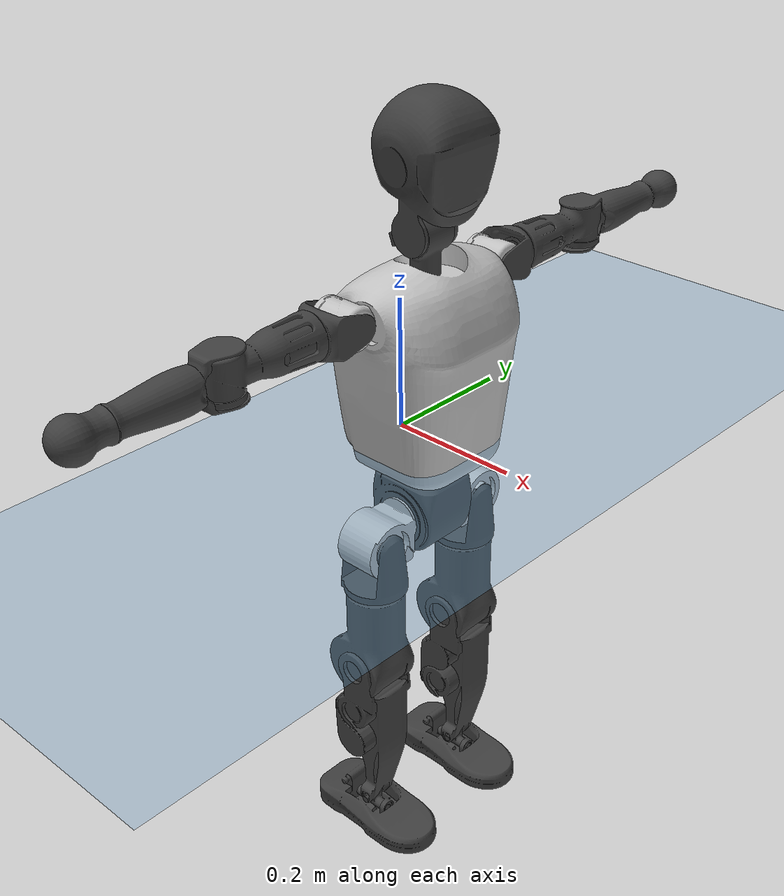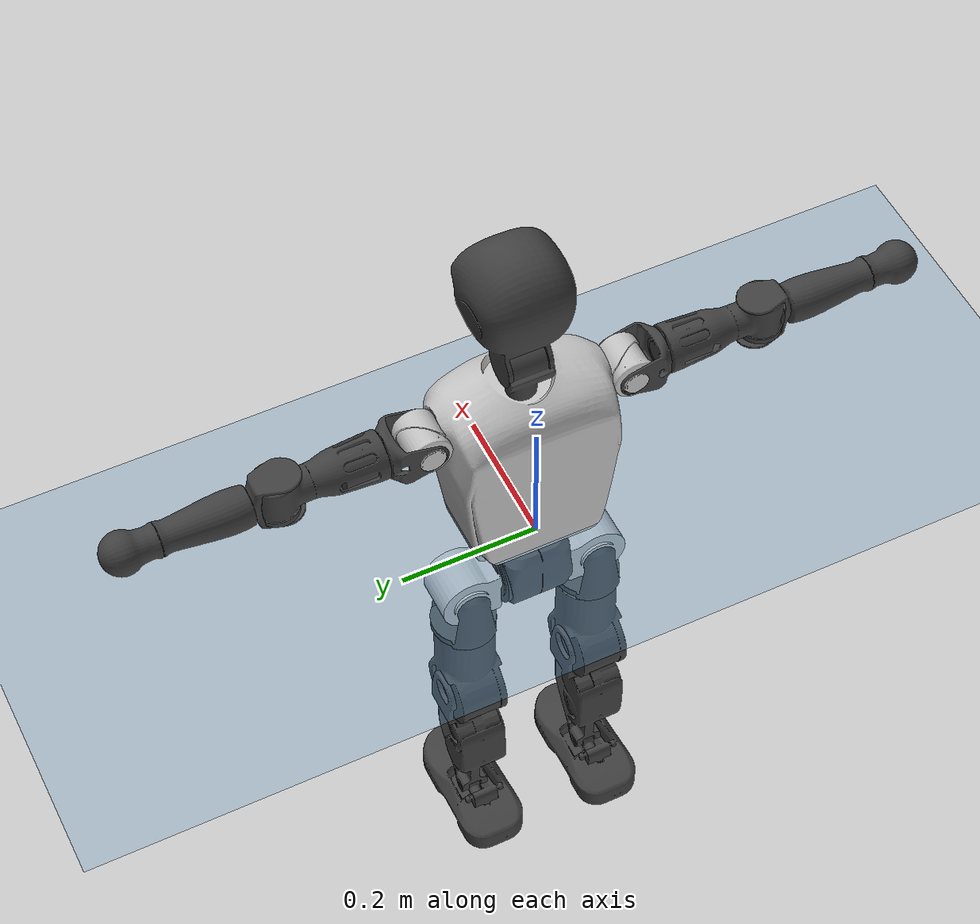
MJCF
<mujoco model="T1">
  <compiler angle="radian" assetdir="assets" balanceinertia="true" inertiafromgeom="false"/>

  <option timestep="0.005" density="1.2" viscosity="2e-05"/>

  <size nkey="1"/>

  <visual>
    <quality shadowsize="8192"/>
    <map shadowclip="0.5"/>
  </visual>

  <default>
    <default class="/">
      <joint armature="0.01" damping="0.01" frictionloss="0.1"/>
      <geom contype="0" conaffinity="0" group="1" solref="-1000 -80"/>
      <site size="0.01 0.005 0.005" group="5"/>
      <general forcelimited="true" biastype="affine" gainprm="25" biasprm="0 -25 -0.6"/>
      <default class="t1">
        <geom rgba="0.25 0.25 0.25 1"/>
        <default class="visual">
          <geom type="mesh" group="2"/>
        </default>
        <default class="collision">
          <geom group="3"/>
        </default>
        <default class="foot">
          <geom size="0.1115 0.05 0.015" type="box" condim="6" group="4" priority="1" solimp="0.015 1 0.015"/>
        </default>
        <default class="reward_collision_sphere">
          <geom group="5" rgba="1 0 0 1"/>
        </default>
      </default>
    </default>
  </default>

  <asset>
    <texture type="skybox" colorspace="auto" name="//unnamed_texture_0" builtin="gradient" rgb1="0.95 0.95 0.95" rgb2="0.95 0.95 0.95" width="100" height="600"/>
    <texture type="2d" colorspace="auto" name="texplane" builtin="checker" rgb1="0.345 0.575 0.748" rgb2="0.345 0.575 0.748" markrgb="1 1 1" width="512" height="512"/>
    <material name="MatPlane" class="/" texture="texplane" texuniform="true" texrepeat="2 2" specular="0.9"/>
    <mesh name="Trunk" class="/" file="Trunk.stl"/>
    <mesh name="H1" class="/" file="H1.stl"/>
    <mesh name="H2" class="/" file="H2.stl"/>
    <mesh name="AL1" class="/" file="AL1.stl"/>
    <mesh name="AL2" class="/" file="AL2.stl"/>
    <mesh name="AL3" class="/" file="AL3.stl"/>
    <mesh name="left_hand_link" class="/" file="left_hand_link.stl"/>
    <mesh name="AR1" class="/" file="AR1.stl"/>
    <mesh name="AR2" class="/" file="AR2.stl"/>
    <mesh name="AR3" class="/" file="AR3.stl"/>
    <mesh name="right_hand_link" class="/" file="right_hand_link.stl"/>
    <mesh name="Waist" class="/" file="Waist.stl"/>
    <mesh name="Hip_Pitch_Left" class="/" file="Hip_Pitch_Left.stl"/>
    <mesh name="Hip_Roll_Left" class="/" file="Hip_Roll_Left.stl"/>
    <mesh name="Hip_Yaw_Left" class="/" file="Hip_Yaw_Left.stl"/>
    <mesh name="Shank_Left" class="/" file="Shank_Left.stl"/>
    <mesh name="Ankle_Cross_Left" class="/" file="Ankle_Cross_Left.stl"/>
    <mesh name="left_foot_link" class="/" file="left_foot_link.stl"/>
    <mesh name="Hip_Pitch_Right" class="/" file="Hip_Pitch_Right.stl"/>
    <mesh name="Hip_Roll_Right" class="/" file="Hip_Roll_Right.stl"/>
    <mesh name="Hip_Yaw_Right" class="/" file="Hip_Yaw_Right.stl"/>
    <mesh name="Shank_Right" class="/" file="Shank_Right.stl"/>
    <mesh name="Ankle_Cross_Right" class="/" file="Ankle_Cross_Right.stl"/>
    <mesh name="right_foot_link" class="/" file="right_foot_link.stl"/>
  </asset>

  <worldbody>
    <geom name="floor" class="/" size="100 100 0.125" type="plane" group="0" material="MatPlane"/>
    <light name="toplight_shadow" class="/" pos="0 0 5" dir="0.0990148 0.0990148 -0.990148" type="directional" ambient="0.04 0.04 0.04" diffuse="0.55 0.55 0.55" specular="0.12 0.12 0.12"/>
    <light name="toplight_fill" class="/" pos="0 0 5" dir="0.0990148 0.0990148 -0.990148" type="directional" castshadow="false" ambient="0.04 0.04 0.04" diffuse="0.3 0.3 0.3" specular="0.08 0.08 0.08"/>
    <body name="trunk" childclass="t1" pos="0.000643264 -0.00218659 0.00155055" quat="0.999999 -0.000960975 -0.000330148 0.000543139">
      <inertial pos="0.0393176 -0.00170879 0.106704" quat="0.999958 0.00156247 -0.00907682 0.000159609" mass="8.3567" diaginertia="0.0181178 0.0573431 0.0655279"/>
      <joint name="//unnamed_joint_0" type="free" armature="0" damping="0" frictionloss="0"/>
      <geom name="//unnamed_geom_1" class="visual" rgba="0.76 0.76 0.76 1" mesh="Trunk"/>
      <geom name="//unnamed_geom_2" class="collision" size="0.0670319 0.0893759 0.134064" pos="0.043191 0 0.122457" type="box"/>
      <geom name="//unnamed_geom_3" class="reward_collision_sphere" size="0.102782" pos="0.043191 0 0.102048"/>
      <geom name="//unnamed_geom_4" class="reward_collision_sphere" size="0.0134064" pos="0.043191 0.0799806 0"/>
      <geom name="//unnamed_geom_5" class="reward_collision_sphere" size="0.0134064" pos="0.043191 -0.0799806 0"/>
      <geom name="//unnamed_geom_6" class="reward_collision_sphere" size="0.0134064" pos="0.043191 0.100681 0.183686"/>
      <geom name="//unnamed_geom_7" class="reward_collision_sphere" size="0.0134064" pos="0.043191 -0.100681 0.183686"/>
      <site name="imu" pos="0.00775903 0.00525195 -0.00525717" size="0.00893759"/>
      <camera name="track" pos="0 -1.8819 0" quat="0.707107 0.707107 0 0" mode="trackcom"/>
      <camera name="ego_camera" pos="0.0878218 0 0.4286" quat="-0.5 -0.5 0.5 0.5"/>
      <body name="H1" pos="0.0464608 0.00198109 0.246302" quat="1 7.37451e-06 -5.58763e-05 8.5433e-05">
        <inertial pos="-0.00311068 -0.00208553 0.0601719" quat="0.767667 -0.0117294 0.0132243 0.640605" mass="0.318437" diaginertia="4.63806e-05 0.000166479 0.000165737"/>
        <joint name="AAHead_yaw" pos="0 0 0" axis="-0.00275296 -0.00327144 0.999991" range="-1.56231 1.53413" armature="0.00807578" damping="0.0166338" frictionloss="0.101002"/>
        <geom name="//unnamed_geom_8" class="visual" mesh="H1"/>
        <body name="H2" pos="-0.000789274 -0.000166058 0.0639583" quat="1 -0.00013239 -0.000136208 -1.4444e-05">
          <inertial pos="0.00434914 0.000147918 0.100349" quat="0.988304 0.106995 -0.0731678 -0.0803399" mass="0.437632" diaginertia="0.000383098 0.00137135 0.00191389"/>
          <joint name="Head_pitch" pos="0 0 0" axis="-0.00164004 -0.999999 -0.000309144" range="-1.2307 0.355137" armature="0.00775854" damping="0.00433862" frictionloss="0.0940737"/>
          <geom name="//unnamed_geom_9" class="visual" mesh="H2"/>
          <geom name="//unnamed_geom_10" class="collision" size="0.0715007" pos="0.0071985 0 0.112253"/>
          <geom name="//unnamed_geom_11" class="reward_collision_sphere" size="0.0804383" pos="0.014397 0 0.102048"/>
        </body>
      </body>
      <body name="AL1" pos="0.0417108 0.099649 0.224451" quat="1 -9.40013e-05 0.000210786 0.000115029">
        <inertial pos="-0.00106748 0.0421792 -0.000557767" quat="0.507769 0.500061 -0.507387 0.484426" mass="0.380137" diaginertia="0.000263237 0.00095007 0.000330884"/>
        <joint name="Left_Shoulder_Pitch" pos="0 0 0" axis="-0.00337472 0.999992 -0.00211545" range="-3.31671 1.2107" armature="0.00873165" damping="0.0068095" frictionloss="0.0917483"/>
        <geom name="//unnamed_geom_12" class="visual" rgba="0.76 0.76 0.76 1" mesh="AL1"/>
        <body name="AL2" pos="0.000532297 0.0448237 0.000183387" quat="1 -9.42673e-05 5.51562e-06 -9.84281e-05">
          <inertial pos="0.00339314 0.035011 -0.00059658" quat="0.488214 0.511897 -0.48773 0.511594" mass="0.116396" diaginertia="7.88123e-05 0.000255026 0.000199018"/>
          <joint name="Left_Shoulder_Roll" pos="0 0 0" axis="-0.999999 -0.000301578 -0.00121009" stiffness="0.0029753" range="-1.56534 1.75384" armature="0.00900158" damping="0.0033063" frictionloss="0.0893996"/>
          <geom name="//unnamed_geom_13" class="visual" mesh="AL2"/>
          <body name="AL3" pos="0.00281892 0.0577827 0.000840522" quat="1 -0.000262973 -0.000831038 -0.000335929">
            <inertial pos="-0.00285176 0.0808145 -0.000298767" quat="0.704934 0.70927 -0.00189491 0.00105035" mass="0.740005" diaginertia="0.00248521 0.00913911 0.000690121"/>
            <joint name="Left_Elbow_Pitch" pos="0 0 0" axis="0.00204456 -0.999998 -2.59132e-06" stiffness="0.00334769" range="-2.26785 2.26982" armature="0.00859948" damping="0.00730101" frictionloss="0.0926856"/>
            <geom name="//unnamed_geom_14" class="visual" mesh="AL3"/>
            <geom name="//unnamed_geom_15" class="collision" size="0.0268128 0.0670319" pos="0 0.0470474 0" quat="0.707105 0.707108 0 0" type="cylinder"/>
            <geom name="//unnamed_geom_16" class="reward_collision_sphere" size="0.0321753"/>
            <body name="left_hand_link" pos="0.000361051 0.138705 -0.00165759" quat="0.999999 -0.000846903 -0.000596397 -0.000521024">
              <inertial pos="-0.000358096 0.10217 0.00159669" quat="0.70704 0.707172 -0.000433427 -0.00110908" mass="0.229625" diaginertia="0.00156654 0.00578057 0.000224122"/>
              <joint name="Left_Elbow_Yaw" pos="0 0 0" axis="0.000689144 -0.00174628 0.999998" stiffness="0.00591976" range="-2.43439 0.0160607" armature="0.00888224" damping="0.0124744" frictionloss="0.0901642"/>
              <geom name="//unnamed_geom_17" class="visual" mesh="left_hand_link"/>
              <geom name="//unnamed_geom_18" class="collision" size="0.0268128 0.0782039" pos="0 0.122323 0" quat="0.707105 0.707108 0 0" type="cylinder"/>
              <geom name="//unnamed_geom_19" class="reward_collision_sphere" size="0.0446879"/>
              <geom name="//unnamed_geom_20" class="reward_collision_sphere" size="0.0312816" pos="0 0.103504 0"/>
              <geom name="//unnamed_geom_21" class="reward_collision_sphere" size="0.0312816" pos="0 0.202304 0"/>
            </body>
          </body>
        </body>
      </body>
      <body name="AR1" pos="0.0412332 -0.101507 0.223732" quat="1 -6.93416e-05 0.000107032 -0.000427558">
        <inertial pos="-0.000282851 -0.0446894 0.00244142" quat="0.504586 0.49391 -0.504913 0.496497" mass="0.376035" diaginertia="0.000262993 0.000919516 0.00032228"/>
        <joint name="Right_Shoulder_Pitch" pos="0 0 0" axis="-0.00703331 -0.999939 -0.00848485" stiffness="0.00273957" range="-1.1903 3.29778" armature="0.00854366" damping="0.00749574" frictionloss="0.0972106"/>
        <geom name="//unnamed_geom_22" class="visual" rgba="0.76 0.76 0.76 1" mesh="AR1"/>
        <body name="AR2" pos="-0.000733316 -0.0435126 0.00049613" quat="1 2.94377e-05 -6.18696e-06 0.000106971">
          <inertial pos="0.00205287 -0.0356705 -1.79975e-05" quat="0.511777 0.487884 -0.511293 0.488501" mass="0.116795" diaginertia="7.96938e-05 0.000261229 0.000195247"/>
          <joint name="Right_Shoulder_Roll" pos="0 0 0" axis="-0.999954 -0.0092792 0.00259582" range="-1.74108 1.56149" armature="0.00787837" damping="0.00793671" frictionloss="0.0908867"/>
          <geom name="//unnamed_geom_23" class="visual" mesh="AR2"/>
          <body name="AR3" pos="-0.000386696 -0.0592054 0.00191987" quat="1 0.000500115 0.000463309 0.000633536">
            <inertial pos="0.00225924 -0.0798428 0.00232752" quat="0.707824 0.706387 -0.00132588 -0.000976147" mass="0.717126" diaginertia="0.00237199 0.00928688 0.000682832"/>
            <joint name="Right_Elbow_Pitch" pos="0 0 0" axis="-4.96753e-05 1 2.9578e-05" range="-2.25418 2.26995" armature="0.00895452" damping="0.00552896" frictionloss="0.101011"/>
            <geom name="//unnamed_geom_24" class="visual" mesh="AR3"/>
            <geom name="//unnamed_geom_25" class="collision" size="0.0268128 0.0670319" pos="0 -0.0470474 0" quat="0.707105 0.707108 0 0" type="cylinder"/>
            <geom name="//unnamed_geom_26" class="reward_collision_sphere" size="0.0321753"/>
            <body name="right_hand_link" pos="-0.00152244 -0.139056 -0.00182699" quat="1 -8.67953e-05 -5.49539e-05 -2.08824e-05">
              <inertial pos="-0.000491999 -0.103967 0.00145913" quat="0.706237 0.707974 -0.00118444 0.000372328" mass="0.235604" diaginertia="0.00162529 0.00619242 0.000246375"/>
              <joint name="Right_Elbow_Yaw" pos="0 0 0" axis="0.00620171 -0.00852101 0.999944" range="0.0200332 2.44259" armature="0.00908821" damping="0.00742225" frictionloss="0.0912207"/>
              <geom name="//unnamed_geom_27" class="visual" mesh="right_hand_link"/>
              <geom name="//unnamed_geom_28" class="collision" size="0.0268128 0.0782039" pos="0 -0.122323 0" quat="0.707105 0.707108 0 0" type="cylinder"/>
              <geom name="//unnamed_geom_29" class="reward_collision_sphere" size="0.0446879"/>
              <geom name="//unnamed_geom_30" class="reward_collision_sphere" size="0.0312816" pos="0 -0.103504 0"/>
              <geom name="//unnamed_geom_31" class="reward_collision_sphere" size="0.0312816" pos="0 -0.202304 0"/>
            </body>
          </body>
        </body>
      </body>
      <body name="Waist" pos="0.0433641 -0.000658197 -0.118752" quat="0.999999 0.000635969 0.00133273 0.000690595">
        <inertial pos="-0.00113553 0.00087911 0.00644685" quat="0.985583 0.00293817 -0.169137 -0.00307022" mass="1.81124" diaginertia="0.00104825 0.00400967 0.00538474"/>
        <joint name="Waist" pos="0 0 0" axis="-0.000808741 -0.00400825 0.999992" range="-1.57269 1.54875" armature="0.00892485" damping="0.014338" frictionloss="0.0879757"/>
        <geom name="//unnamed_geom_32" class="visual" mesh="Waist"/>
        <body name="Hip_Pitch_Left" pos="0.00164188 0.0975626 0.00149552" quat="1 0.000171917 0.00019474 0.000152773">
          <inertial pos="0.00314723 -0.00655225 -0.0184842" quat="0.976445 0.215005 0.0163112 -0.00788035" mass="0.737035" diaginertia="0.000341087 0.00110788 0.00141494"/>
          <joint name="Left_Hip_Pitch" pos="0 0 0" axis="-0.00399778 0.999992 -0.000999907" stiffness="0.00995824" range="-1.80997 1.5906" armature="0.00911357" damping="0.0119645" frictionloss="0.0918898"/>
          <geom name="//unnamed_geom_33" class="visual" rgba="0.76 0.76 0.76 1" mesh="Hip_Pitch_Left"/>
          <body name="Hip_Roll_Left" pos="-0.00157745 -0.000332573 -0.0236853" quat="1 -1.5379e-05 4.27865e-05 2.64977e-05">
            <inertial pos="0.00123077 -0.00255032 -0.0546624" quat="0.707093 -0.00610507 -0.00605367 0.707068" mass="0.271205" diaginertia="0.000321524 0.00106449 0.000578061"/>
            <joint name="Left_Hip_Roll" pos="0 0 0" axis="-0.999998 0.00195514 -0.000289472" range="-1.55155 0.206026" armature="0.00849793" damping="0" frictionloss="0.09696"/>
            <geom name="//unnamed_geom_34" class="visual" mesh="Hip_Roll_Left"/>
            <geom name="//unnamed_geom_35" class="reward_collision_sphere" size="0.0491567"/>
            <body name="Hip_Yaw_Left" pos="0.000140696 -0.000937429 -0.0831897" quat="1 -0.000192454 -0.000206159 -0.00023014">
              <inertial pos="-0.00536767 -0.00133977 -0.0926793" quat="0.700045 -0.0338724 -0.0326568 0.712547" mass="1.53534" diaginertia="0.00488639 0.0180501 0.00277697"/>
              <joint name="Left_Hip_Yaw" pos="0 0 0" axis="0.000342528 -0.000862686 -1" range="-1.05654 1.01232" armature="0.00913217" damping="0.00551598" frictionloss="0.087887"/>
              <geom name="//unnamed_geom_36" class="visual" mesh="Hip_Yaw_Left"/>
              <geom name="//unnamed_geom_37" class="collision" size="0.0446879 0.0715007" type="cylinder"/>
              <body name="Shank_Left" pos="-0.0106349 0.000202519 -0.139272" quat="1 0.000111572 -0.00012553 0.000112169">
                <inertial pos="-0.00596384 0.000334427 -0.126671" quat="0.997722 0.00213506 -0.0243953 0.0628528" mass="1.21986" diaginertia="0.00672277 0.024363 0.00198591"/>
                <joint name="Left_Knee_Pitch" pos="0 0 0" axis="-0.00364974 0.99999 -0.00264965" range="0.00130136 2.32189" armature="0.0095707" damping="0.000212523" frictionloss="0.0869713"/>
                <geom name="//unnamed_geom_38" class="visual" mesh="Shank_Left"/>
                <geom name="//unnamed_geom_39" class="collision" size="0.0446879 0.0670319" pos="0 0 -0.122457" type="cylinder"/>
                <geom name="//unnamed_geom_40" class="reward_collision_sphere" size="0.0580943"/>
                <body name="Ankle_Cross_Left" pos="0.00213163 -0.000236984 -0.284857" quat="1 -6.66447e-05 -4.11175e-06 -5.04857e-05">
                  <inertial pos="-0.0052081 -0.000964894 -0.00789798" quat="0.443058 0.551293 0.552397 0.441173" mass="0.0517961" diaginertia="5.54569e-06 1.884e-05 1.24028e-05"/>
                  <joint name="Left_Ankle_Pitch" pos="0 0 0" axis="0.000168558 1 -3.39233e-06" range="-0.870499 0.34662" armature="0.0100541" damping="0.0202897" frictionloss="0.0918396"/>
                  <geom name="//unnamed_geom_41" class="visual" mesh="Ankle_Cross_Left"/>
                  <body name="left_foot_link" pos="-0.000115977 -0.00183783 -0.0108845" quat="0.999999 0.000509856 0.000878781 0.000781303">
                    <inertial pos="-0.00182312 -0.000209388 -0.00879575" quat="0.0115054 0.623306 -0.000951617 0.781893" mass="0.50754" diaginertia="0.00053787 0.00176443 0.00246691"/>
                    <joint name="Left_Ankle_Roll" pos="0 0 0" axis="-0.999898 -0.00281806 -0.0140063" range="-0.458695 0.460849" armature="0.00888663" damping="0" frictionloss="0.0939072"/>
                    <geom name="//unnamed_geom_42" class="visual" mesh="left_foot_link"/>
                    <geom name="left_foot" class="foot" size="0.109424 0.0409219 0.014171" pos="0.0071985 0 -0.0153072"/>
                    <geom name="//unnamed_geom_44" class="reward_collision_sphere" size="0.0464754" pos="0.0071985 0 -0.0153072"/>
                    <geom name="//unnamed_geom_45" class="reward_collision_sphere" size="0.0268128" pos="0.0683858 -0.0216418 -0.0153072"/>
                    <geom name="//unnamed_geom_46" class="reward_collision_sphere" size="0.0268128" pos="-0.0503895 -0.0216418 -0.0153072"/>
                    <site name="left_foot" class="foot" pos="0.0071985 0 -0.0153072" size="0.00893759"/>
                  </body>
                </body>
              </body>
            </body>
          </body>
        </body>
        <body name="Hip_Pitch_Right" pos="0.00102779 -0.100032 -0.000773155" quat="1 0.000119159 4.58222e-05 0.000155732">
          <inertial pos="-0.00224464 0.0048059 -0.0174564" quat="0.973478 -0.228483 0.0116391 5.82653e-05" mass="0.726393" diaginertia="0.000356308 0.00110213 0.00136886"/>
          <joint name="Right_Hip_Pitch" pos="0 0 0" axis="0.000536092 -0.999992 0.00401264" range="-1.5508 1.77857" armature="0.00926812" damping="0" frictionloss="0.0867598"/>
          <geom name="//unnamed_geom_47" class="visual" rgba="0.76 0.76 0.76 1" mesh="Hip_Pitch_Right"/>
          <body name="Hip_Roll_Right" pos="-0.00207721 0.000408852 -0.0213968" quat="1 -0.000385724 -5.97142e-05 0.000357146">
            <inertial pos="-9.84982e-05 -0.00116688 -0.053334" quat="0.71441 -0.00796713 -0.0042611 0.699669" mass="0.274363" diaginertia="0.000349263 0.00113893 0.000568641"/>
            <joint name="Right_Hip_Roll" pos="0 0 0" axis="-0.999986 0.00174472 0.00497365" range="-0.189902 1.579" armature="0.0085899" damping="0.00352573" frictionloss="0.0948834"/>
            <geom name="//unnamed_geom_48" class="visual" mesh="Hip_Roll_Right"/>
            <geom name="//unnamed_geom_49" class="reward_collision_sphere" size="0.0491567"/>
            <body name="Hip_Yaw_Right" pos="-0.00161763 0.000725277 -0.0859152" quat="1 -0.000523216 -0.000284813 6.05184e-05">
              <inertial pos="-0.00482556 0.000261546 -0.0904425" quat="0.714909 -0.0322327 -0.0351241 0.69759" mass="1.53463" diaginertia="0.00512739 0.0188804 0.00295648"/>
              <joint name="Right_Hip_Yaw" pos="0 0 0" axis="0.00100101 -0.000330283 -0.999999" stiffness="0.000374603" range="-1.00251 1.00992" armature="0.00872419" damping="0.022004" frictionloss="0.0933269"/>
              <geom name="//unnamed_geom_50" class="visual" mesh="Hip_Yaw_Right"/>
              <geom name="//unnamed_geom_51" class="collision" size="0.0446879 0.0715007" type="cylinder"/>
              <body name="Shank_Right" pos="-0.0116803 0.00034612 -0.138962" quat="1 -4.9296e-05 0.000255629 -0.00020409">
                <inertial pos="-0.00418486 -0.00225037 -0.124846" quat="0.999469 0.00189496 -0.0229265 -0.0230662" mass="1.30432" diaginertia="0.00681849 0.0255901 0.00209824"/>
                <joint name="Right_Knee_Pitch" pos="0 0 0" axis="0.00364531 -0.999957 -0.0084879" stiffness="6.23547e-05" range="-2.38846 0.00253567" armature="0.00940326" damping="0.00944506" frictionloss="0.0908989"/>
                <geom name="//unnamed_geom_52" class="visual" mesh="Shank_Right"/>
                <geom name="//unnamed_geom_53" class="collision" size="0.0446879 0.0670319" pos="0 0 -0.122457" type="cylinder"/>
                <geom name="//unnamed_geom_54" class="reward_collision_sphere" size="0.0580943"/>
                <body name="Ankle_Cross_Right" pos="-0.000150212 -0.00165729 -0.287485" quat="1 -2.56133e-05 -3.60284e-06 -3.52236e-05">
                  <inertial pos="-0.00344328 0.000615747 -0.00813415" quat="0.443333 0.550932 0.550995 0.443097" mass="0.051973" diaginertia="5.81022e-06 1.88295e-05 1.30085e-05"/>
                  <joint name="Right_Ankle_Pitch" pos="0 0 0" axis="-0.0045849 -0.999947 -0.0092028" range="-0.333604 0.836487" armature="0.00888359" damping="0.00944264" frictionloss="0.0880332"/>
                  <geom name="//unnamed_geom_55" class="visual" mesh="Ankle_Cross_Right"/>
                  <body name="right_foot_link" pos="0.000434027 0.0009916 -0.0110914" quat="1 -4.85068e-05 -0.000110477 -2.86658e-06">
                    <inertial pos="-4.27502e-05 0.00197243 -0.0119068" quat="0.00158477 0.612849 -0.00357453 0.79019" mass="0.47459" diaginertia="0.000504527 0.00169583 0.00226648"/>
                    <joint name="Right_Ankle_Roll" pos="0 0 0" axis="-0.999988 -0.00123993 -0.00478773" range="-0.476907 0.489608" armature="0.00774764" damping="0" frictionloss="0.0955064"/>
                    <geom name="//unnamed_geom_56" class="visual" mesh="right_foot_link"/>
                    <geom name="right_foot" class="foot" size="0.0970886 0.0414742 0.0143586" pos="0.0071985 0 -0.0153072"/>
                    <geom name="//unnamed_geom_58" class="reward_collision_sphere" size="0.0357503"/>
                    <geom name="//unnamed_geom_59" class="reward_collision_sphere" size="0.0268128" pos="0.0071985 0 -0.0153072"/>
                    <geom name="//unnamed_geom_60" class="reward_collision_sphere" size="0.0268128" pos="0.0683858 0.0216418 -0.0153072"/>
                    <geom name="//unnamed_geom_61" class="reward_collision_sphere" size="0.0268128" pos="-0.0503895 0.0216418 -0.0153072"/>
                    <site name="right_foot" class="foot" pos="0.0071985 0 -0.0153072" size="0.00893759"/>
                  </body>
                </body>
              </body>
            </body>
          </body>
        </body>
      </body>
    </body>
  </worldbody>

  <contact>
    <pair class="/" geom1="floor" geom2="left_foot" name="//unnamed_contact_0"/>
    <pair class="/" geom1="floor" geom2="right_foot" name="//unnamed_contact_1"/>
  </contact>

  <actuator>
    <general name="AAHead_yaw" class="/" joint="AAHead_yaw" forcerange="-6.33522 6.33522" gainprm="22.4992" biasprm="0 -22.4992 -0.529252"/>
    <general name="Head_pitch" class="/" joint="Head_pitch" forcerange="-6.338 6.338" gainprm="22.4992" biasprm="0 -22.4992 -0.529252"/>
    <general name="Left_Shoulder_Pitch" class="/" joint="Left_Shoulder_Pitch" forcerange="-14.4527 14.4527" gainprm="22.4992" biasprm="0 -22.4992 -0.529252"/>
    <general name="Left_Shoulder_Roll" class="/" joint="Left_Shoulder_Roll" forcerange="-14.6289 14.6289" gainprm="22.4992" biasprm="0 -22.4992 -0.529252"/>
    <general name="Left_Elbow_Pitch" class="/" joint="Left_Elbow_Pitch" forcerange="-16.8101 16.8101" gainprm="22.4992" biasprm="0 -22.4992 -0.529252"/>
    <general name="Left_Elbow_Yaw" class="/" joint="Left_Elbow_Yaw" forcerange="-16.3046 16.3046" gainprm="22.4992" biasprm="0 -22.4992 -0.529252"/>
    <general name="Right_Shoulder_Pitch" class="/" joint="Right_Shoulder_Pitch" forcerange="-16.6059 16.6059" gainprm="22.4992" biasprm="0 -22.4992 -0.529252"/>
    <general name="Right_Shoulder_Roll" class="/" joint="Right_Shoulder_Roll" forcerange="-16.939 16.939" gainprm="22.4992" biasprm="0 -22.4992 -0.529252"/>
    <general name="Right_Elbow_Pitch" class="/" joint="Right_Elbow_Pitch" forcerange="-15.634 15.634" gainprm="22.4992" biasprm="0 -22.4992 -0.529252"/>
    <general name="Right_Elbow_Yaw" class="/" joint="Right_Elbow_Yaw" forcerange="-16.665 16.665" gainprm="22.4992" biasprm="0 -22.4992 -0.529252"/>
    <general name="Waist" class="/" joint="Waist" forcerange="-24.9785 24.9785" gainprm="22.4992" biasprm="0 -22.4992 -0.529252"/>
    <general name="Left_Hip_Pitch" class="/" joint="Left_Hip_Pitch" forcerange="-39.9532 39.9532" gainprm="22.4992" biasprm="0 -22.4992 -0.529252"/>
    <general name="Left_Hip_Roll" class="/" joint="Left_Hip_Roll" forcerange="-26.0816 26.0816" gainprm="22.4992" biasprm="0 -22.4992 -0.529252"/>
    <general name="Left_Hip_Yaw" class="/" joint="Left_Hip_Yaw" forcerange="-26.35 26.35" gainprm="22.4992" biasprm="0 -22.4992 -0.529252"/>
    <general name="Left_Knee_Pitch" class="/" joint="Left_Knee_Pitch" forcerange="-53.3547 53.3547" gainprm="22.4992" biasprm="0 -22.4992 -0.529252"/>
    <general name="Left_Ankle_Pitch" class="/" joint="Left_Ankle_Pitch" forcerange="-17.9466 17.9466" gainprm="22.4992" biasprm="0 -22.4992 -0.529252"/>
    <general name="Left_Ankle_Roll" class="/" joint="Left_Ankle_Roll" forcerange="-12.9379 12.9379" gainprm="22.4992" biasprm="0 -22.4992 -0.529252"/>
    <general name="Right_Hip_Pitch" class="/" joint="Right_Hip_Pitch" forcerange="-43.7351 43.7351" gainprm="22.4992" biasprm="0 -22.4992 -0.529252"/>
    <general name="Right_Hip_Roll" class="/" joint="Right_Hip_Roll" forcerange="-29.385 29.385" gainprm="22.4992" biasprm="0 -22.4992 -0.529252"/>
    <general name="Right_Hip_Yaw" class="/" joint="Right_Hip_Yaw" forcerange="-27.1687 27.1687" gainprm="22.4992" biasprm="0 -22.4992 -0.529252"/>
    <general name="Right_Knee_Pitch" class="/" joint="Right_Knee_Pitch" forcerange="-53.8894 53.8894" gainprm="22.4992" biasprm="0 -22.4992 -0.529252"/>
    <general name="Right_Ankle_Pitch" class="/" joint="Right_Ankle_Pitch" forcerange="-16.1541 16.1541" gainprm="22.4992" biasprm="0 -22.4992 -0.529252"/>
    <general name="Right_Ankle_Roll" class="/" joint="Right_Ankle_Roll" forcerange="-14.3561 14.3561" gainprm="22.4992" biasprm="0 -22.4992 -0.529252"/>
  </actuator>

  <sensor>
    <gyro site="imu" name="imu_angular_velocity"/>
    <velocimeter site="imu" name="imu_linear_velocity"/>
    <framelinvel objtype="site" objname="left_foot" name="left_foot_global_linear_velocity"/>
    <framelinvel objtype="site" objname="right_foot" name="right_foot_global_linear_velocity"/>
  </sensor>

  <keyframe>
    <key name="home" qpos="0 0 0.6385 1 0 0 0 0 0 0 1.4 0 -0.4 0 -1.4 0 0.4 0 -0.4 0 0 0.8 -0.4 0 0.4 0 0 -0.8 0.4 0"/>
  </keyframe>
</mujoco>
